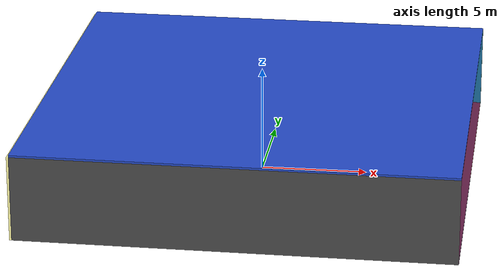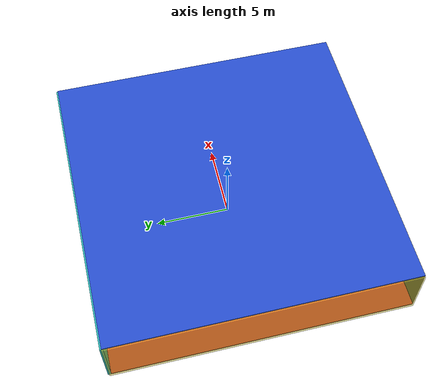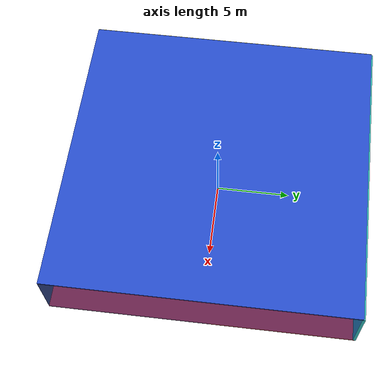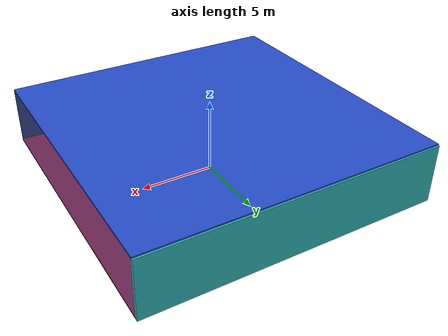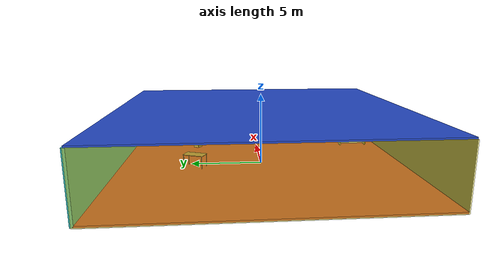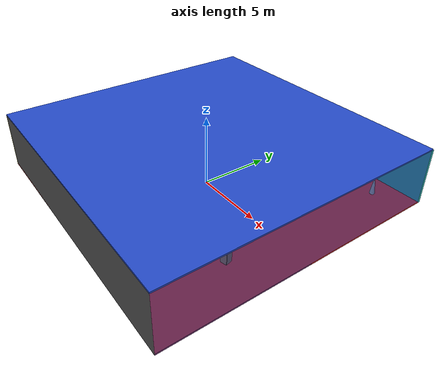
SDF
<sdf version="1.4">
 <world name="default">
  <physics type="ode">
   <max_step_size>0.001</max_step_size>
   <real_time_factor>1</real_time_factor>
   <real_time_update_rate>1000</real_time_update_rate>
   <gravity>0 0 -9.8</gravity>
  </physics>
  <scene><ambient>0.4 0.4 0.4 1</ambient><background>0.7 0.7 0.7 1</background><shadows>1</shadows></scene>
  <model name="Surrounding">
   <static>1</static>
   <link name="Ceiling">
    <collision name="Ceiling_Collision"><geometry><box><size>20 20 0.1</size></box></geometry></collision>
    <visual name="Ceiling_Visual">
     <geometry><box><size>20 20 0.1</size></box></geometry>
     <material>
      <script><uri>file://media/materials/scripts/gazebo.material</uri><name>Gazebo/BlueLaser</name></script>
     </material>
    </visual>
    <pose>0 0 4.05 0 0 0</pose>
   </link>
   <link name="Wall_South">
    <collision name="Wall_South_Collision">
     <geometry><box><size>20 0 4</size></box></geometry>
     <pose>0 0 2 0 -0 0</pose>
    </collision>
    <visual name="Wall_South_Visual">
     <pose>0 0 2 0 -0 0</pose>
     <geometry><box><size>20 0 4</size></box></geometry>
     <material>
      <script><uri>file://media/materials/scripts/gazebo.material</uri><name>Gazebo/DarkGrey</name></script>
     </material>
    </visual>
    <velocity_decay><linear>0</linear><angular>0</angular></velocity_decay>
    <pose>0 -10 0 0 -0 0</pose>
   </link>
   <link name="Wall_East">
    <collision name="Wall_21_Collision">
     <geometry><box><size>20 0 4</size></box></geometry>
     <pose>0 0 2 0 -0 0</pose>
    </collision>
    <visual name="Wall_21_Visual">
     <pose>0 0 2 0 -0 0</pose>
     <geometry><box><size>20 0 4</size></box></geometry>
     <material>
      <script><uri>file://media/materials/scripts/gazebo.material</uri><name>Gazebo/BlueTransparent</name></script>
     </material>
    </visual>
    <velocity_decay><linear>0</linear><angular>0</angular></velocity_decay>
    <pose>10 0 0 0 -0 1.5708</pose>
   </link>
   <link name="Wall_North">
    <collision name="Wall_22_Collision">
     <geometry><box><size>20 0.2 4</size></box></geometry>
     <pose>0 0 2 0 -0 0</pose>
    </collision>
    <visual name="Wall_22_Visual">
     <pose>0 0 2 0 -0 0</pose>
     <geometry><box><size>20 0.2 4</size></box></geometry>
     <material>
      <script>
       <uri>file://media/materials/scripts/gazebo.material</uri>
       <name>Gazebo/TurquoiseGlowOutline</name>
      </script>
     </material>
    </visual>
    <velocity_decay><linear>0</linear><angular>0</angular></velocity_decay>
    <pose>0 10 0 0 -0 0</pose>
   </link>
   <link name="Wall_West">
    <collision name="Wall_23_Collision">
     <geometry><box><size>20 0.2 4</size></box></geometry>
     <pose>0 0 2 0 -0 0</pose>
    </collision>
    <visual name="Wall_23_Visual">
     <pose>0 0 2 0 -0 0</pose>
     <geometry><box><size>20 0.2 4</size></box></geometry>
     <material>
      <script>
       <uri>file://media/materials/scripts/gazebo.material</uri>
       <name>Gazebo/YellowTransparent</name>
      </script>
     </material>
    </visual>
    <velocity_decay><linear>0</linear><angular>0</angular></velocity_decay>
    <pose>-10 0 0 0 0 -1.5708</pose>
   </link>
   <link name="Ground_link">
    <collision name="collision">
     <pose>0 0 .05 0 -0 0</pose>
     <geometry><box><size>20 20 0.1</size></box></geometry>
    </collision>
    <visual name="visual">
     <pose>0 0 .05 0 -0 0</pose>
     <geometry><box><size>20 20 0.1</size></box></geometry>
     <material>
      <script><uri>file://media/materials/scripts/gazebo.material</uri><name>Gazebo/RedBright</name></script>
     </material>
    </visual>
   </link>
   <static>1</static>
  </model>
  <spherical_coordinates>
   <surface_model>EARTH_WGS84</surface_model>
   <latitude_deg>0</latitude_deg>
   <longitude_deg>0</longitude_deg>
   <elevation>0</elevation>
   <heading_deg>0</heading_deg>
  </spherical_coordinates>
  <light name="lightball_0" type="diffuse">
   <diffuse>0.8 0.8 0.8 1</diffuse>
   <specular>0.2 0.2 0.2 1</specular>
   <attenuation>
    <range>100</range>
    <constant>0.7</constant>
    <linear>0.01</linear>
    <quadratic>0.001</quadratic>
   </attenuation>
   <direction>-0.5 0.1 -0.9</direction>
   <pose>6.68664617145 -8.04404253702 2.31556514601 0 0 0</pose>
  </light>
  <light name="lightball_1" type="diffuse">
   <diffuse>0.8 0.8 0.8 1</diffuse>
   <specular>0.2 0.2 0.2 1</specular>
   <attenuation>
    <range>100</range>
    <constant>0.7</constant>
    <linear>0.01</linear>
    <quadratic>0.001</quadratic>
   </attenuation>
   <direction>-0.5 0.1 -0.9</direction>
   <pose>-1.22757888872 4.8118968765 0.64277269927 0 0 0</pose>
  </light>
  <light name="lightball_2" type="diffuse">
   <diffuse>0.8 0.8 0.8 1</diffuse>
   <specular>0.2 0.2 0.2 1</specular>
   <attenuation>
    <range>100</range>
    <constant>0.7</constant>
    <linear>0.01</linear>
    <quadratic>0.001</quadratic>
   </attenuation>
   <direction>-0.5 0.1 -0.9</direction>
   <pose>-4.61580587524 -4.79006754535 1.56794557545 0 0 0</pose>
  </light>
  <light name="lightball_3" type="diffuse">
   <diffuse>0.8 0.8 0.8 1</diffuse>
   <specular>0.2 0.2 0.2 1</specular>
   <attenuation>
    <range>100</range>
    <constant>0.7</constant>
    <linear>0.01</linear>
    <quadratic>0.001</quadratic>
   </attenuation>
   <direction>-0.5 0.1 -0.9</direction>
   <pose>7.83184589282 -9.59329487537 2.67901358066 0 0 0</pose>
  </light>
  <include><uri>model://table</uri><pose>-0.999396564865 4.69665414286 0 0 0 1.17582857115</pose></include>
  <include>
   <uri>model://robocup_3Dsim_goal</uri>
   <pose>4.01297093916 -8.04609191871 0 0 0 0.0280691674997</pose>
  </include>
  <include><uri>model://cabinet</uri><pose>4.46986736004 4.84814282024 0 0 0 2.56241240805</pose></include>
  <include><uri>model://cabinet</uri><pose>7.08669597021 -3.70143921809 0 0 0 0.254646121275</pose></include>
  <include>
   <uri>model://construction_cone</uri>
   <pose>7.60796972584 8.25507066408 0 0 0 3.03359113284</pose>
  </include>
 </world>
</sdf>

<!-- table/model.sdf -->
<sdf version="1.5">
  <model name="table">
    <static>true</static>
    <link name="link">
      <collision name="surface">
        <pose>0 0 1.0 0 0 0</pose>
        <geometry>
          <box>
            <size>1.5 0.8 0.03</size>
          </box>
        </geometry>
        <surface>
          <friction>
            <ode>
              <mu>0.6</mu>
              <mu2>0.6</mu2>
            </ode>
          </friction>
        </surface>
      </collision>
      <visual name="visual1">
        <pose>0 0 1.0 0 0 0</pose>
        <geometry>
          <box>
            <size>1.5 0.8 0.03</size>
          </box>
        </geometry>
        <material>
          <script>
            <uri>model://media/materials/scripts/gazebo.material</uri>
            <name>Gazebo/Wood</name>
          </script>
        </material>
      </visual>
      <collision name="front_left_leg">
        <pose>0.68 0.38 0.5 0 0 0</pose>
        <geometry>
          <cylinder>
            <radius>0.02</radius>
            <length>1.0</length>
          </cylinder>
        </geometry>
      </collision>
      <visual name="front_left_leg">
        <pose>0.68 0.38 0.5 0 0 0</pose>
        <geometry>
          <cylinder>
            <radius>0.02</radius>
            <length>1.0</length>
          </cylinder>
        </geometry>
        <material>
          <script>
            <uri>model://media/materials/scripts/gazebo.material</uri>
            <name>Gazebo/Grey</name>
          </script>
        </material>
      </visual>
      <collision name="front_right_leg">
        <pose>0.68 -0.38 0.5 0 0 0</pose>
        <geometry>
          <cylinder>
            <radius>0.02</radius>
            <length>1.0</length>
          </cylinder>
        </geometry>
      </collision>
      <visual name="front_right_leg">
        <pose>0.68 -0.38 0.5 0 0 0</pose>
        <geometry>
          <cylinder>
            <radius>0.02</radius>
            <length>1.0</length>
          </cylinder>
        </geometry>
        <material>
          <script>
            <uri>model://media/materials/scripts/gazebo.material</uri>
            <name>Gazebo/Grey</name>
          </script>
        </material>
      </visual>
      <collision name="back_right_leg">
        <pose>-0.68 -0.38 0.5 0 0 0</pose>
        <geometry>
          <cylinder>
            <radius>0.02</radius>
            <length>1.0</length>
          </cylinder>
        </geometry>
      </collision>
      <visual name="back_right_leg">
        <pose>-0.68 -0.38 0.5 0 0 0</pose>
        <geometry>
          <cylinder>
            <radius>0.02</radius>
            <length>1.0</length>
          </cylinder>
        </geometry>
        <material>
          <script>
            <uri>model://media/materials/scripts/gazebo.material</uri>
            <name>Gazebo/Grey</name>
          </script>
        </material>
      </visual>
      <collision name="back_left_leg">
        <pose>-0.68 0.38 0.5 0 0 0</pose>
        <geometry>
          <cylinder>
            <radius>0.02</radius>
            <length>1.0</length>
          </cylinder>
        </geometry>
      </collision>
      <visual name="back_left_leg">
        <pose>-0.68 0.38 0.5 0 0 0</pose>
        <geometry>
          <cylinder>
            <radius>0.02</radius>
            <length>1.0</length>
          </cylinder>
        </geometry>
        <material>
          <script>
            <uri>model://media/materials/scripts/gazebo.material</uri>
            <name>Gazebo/Grey</name>
          </script>
        </material>
      </visual>
    </link>
  </model>
</sdf>

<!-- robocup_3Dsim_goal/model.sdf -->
<sdf version="1.5">
  <model name="robocup_3d_goal">
    <static>true</static>
    <link name="left_post">
      <pose>0 1.05 0.45 0 0 0</pose>
      <collision name="collision">
        <geometry>
          <cylinder>
            <radius>0.05</radius>
            <length>0.9</length>
          </cylinder>
        </geometry>
      </collision>
      <visual name="visual">
        <geometry>
          <cylinder>
            <radius>0.05</radius>
            <length>0.9</length>
          </cylinder>
        </geometry>
        <material>
          <script>
            <uri>file://media/materials/scripts/gazebo.material</uri>
            <name>Gazebo/ZincYellow</name>
          </script>
        </material>
      </visual>
    </link>
    <link name="left_support_horiz_lower">
      <pose>0.30 1.05 0.01 0 0 0</pose>
      <collision name="collision">
        <geometry>
          <box>
            <size>0.50 0.02 0.02</size>
          </box>
        </geometry>
      </collision>
      <visual name="visual">
        <geometry>
          <box>
            <size>0.50 0.02 0.02</size>
          </box>
        </geometry>
        <material>
          <script>
            <uri>file://media/materials/scripts/gazebo.material</uri>
            <name>Gazebo/White</name>
          </script>
        </material>
      </visual>
    </link>
    <link name="left_support_horiz_upper">
      <pose>0.30 1.05 0.79 0 0 0</pose>
      <collision name="collision">
        <geometry>
          <box>
            <size>0.50 0.02 0.02</size>
          </box>
        </geometry>
      </collision>
      <visual name="visual">
        <geometry>
          <box>
            <size>0.50 0.02 0.02</size>
          </box>
        </geometry>
        <material>
          <script>
            <uri>file://media/materials/scripts/gazebo.material</uri>
            <name>Gazebo/White</name>
          </script>
        </material>
      </visual>
    </link>
    <link name="left_support_vertical">
      <pose>0.56 1.05 0.4 0 1.5708 0</pose>
      <collision name="collision">
        <geometry>
          <box>
            <size>0.80 0.02 0.02</size>
          </box>
        </geometry>
      </collision>
      <visual name="visual">
        <geometry>
          <box>
            <size>0.80 0.02 0.02</size>
          </box>
        </geometry>
        <material>
          <script>
            <uri>file://media/materials/scripts/gazebo.material</uri>
            <name>Gazebo/White</name>
          </script>
        </material>
      </visual>
    </link>
    <link name="right_support_horiz_lower">
      <pose>0.30 -1.05 0.01 0 0 0</pose>
      <collision name="collision">
        <geometry>
          <box>
            <size>0.50 0.02 0.02</size>
          </box>
        </geometry>
      </collision>
      <visual name="visual">
        <geometry>
          <box>
            <size>0.50 0.02 0.02</size>
          </box>
        </geometry>
        <material>
          <script>
            <uri>file://media/materials/scripts/gazebo.material</uri>
            <name>Gazebo/White</name>
          </script>
        </material>
      </visual>
    </link>
    <link name="right_support_horiz_upper">
      <pose>0.30 -1.05 0.79 0 0 0</pose>
      <collision name="collision">
        <geometry>
          <box>
            <size>0.50 0.02 0.02</size>
          </box>
        </geometry>
      </collision>
      <visual name="visual">
        <geometry>
          <box>
            <size>0.50 0.02 0.02</size>
          </box>
        </geometry>
        <material>
          <script>
            <uri>file://media/materials/scripts/gazebo.material</uri>
            <name>Gazebo/White</name>
          </script>
        </material>
      </visual>
    </link>
    <link name="right_support_vertical">
      <pose>0.56 -1.05 0.4 0 1.5708 0</pose>
      <collision name="collision">
        <geometry>
          <box>
            <size>0.80 0.02 0.02</size>
          </box>
        </geometry>
      </collision>
      <visual name="visual">
        <geometry>
          <box>
            <size>0.80 0.02 0.02</size>
          </box>
        </geometry>
        <material>
          <script>
            <uri>file://media/materials/scripts/gazebo.material</uri>
            <name>Gazebo/White</name>
          </script>
        </material>
      </visual>
    </link>
    <link name="center_support_horiz_lower">
      <pose>0.56 0 0.01 0 1.5708 0</pose>
      <collision name="collision">
        <geometry>
          <box>
            <size>0.02 2.08 0.02</size>
          </box>
        </geometry>
      </collision>
      <visual name="visual">
        <geometry>
          <box>
            <size>0.02 2.08 0.02</size>
          </box>
        </geometry>
        <material>
          <script>
            <uri>file://media/materials/scripts/gazebo.material</uri>
            <name>Gazebo/White</name>
          </script>
        </material>
      </visual>
    </link>
    <link name="center_support_horiz_upper">
      <pose>0.56 0 0.79 0 1.5708 0</pose>
      <collision name="collision">
        <geometry>
          <box>
            <size>0.02 2.08 0.02</size>
          </box>
        </geometry>
      </collision>
      <visual name="visual">
        <geometry>
          <box>
            <size>0.02 2.08 0.02</size>
          </box>
        </geometry>
        <material>
          <script>
            <uri>file://media/materials/scripts/gazebo.material</uri>
            <name>Gazebo/White</name>
          </script>
        </material>
      </visual>
    </link>
    <link name="right_post">
      <pose>0 -1.05 0.45 0 0 0</pose>
      <collision name="collision">
        <geometry>
          <cylinder>
            <radius>0.05</radius>
            <length>0.9</length>
          </cylinder>
        </geometry>
      </collision>
      <visual name="visual">
        <geometry>
          <cylinder>
            <radius>0.05</radius>
            <length>0.9</length>
          </cylinder>
        </geometry>
        <material>
          <script>
            <uri>file://media/materials/scripts/gazebo.material</uri>
            <name>Gazebo/ZincYellow</name>
          </script>
        </material>
      </visual>
    </link>
    <link name="crossbar">
      <pose>0 0 0.85 1.57 1.57 0</pose>
      <collision name="collision">
        <geometry>
          <cylinder>
            <radius>0.05</radius>
            <length>2.0</length>
          </cylinder>
        </geometry>
      </collision>
      <visual name="visual">
        <geometry>
          <cylinder>
            <radius>0.05</radius>
            <length>2.0</length>
          </cylinder>
        </geometry>
        <material>
          <script>
            <uri>file://media/materials/scripts/gazebo.material</uri>
            <name>Gazebo/ZincYellow</name>
          </script>
        </material>
      </visual>
    </link>
    <link name="center_net">
      <pose>0.56 0 0.40 0 0 0</pose>
      <collision name="collision">
        <geometry>
          <box>
            <size>0.01 2.1 0.80</size>
          </box>
        </geometry>
      </collision>
      <visual name="visual">
        <geometry>
          <box>
            <size>0.01 2.1 0.80</size>
          </box>
        </geometry>
        <material>
          <script>
            <uri>model://../model_source/models/robocup09_spl_field/materials/scripts/</uri>
            <uri>model://../model_source/models/robocup09_spl_field/materials/textures/</uri>
            <name>RoboCup/Net</name>
          </script>
        </material>
      </visual>
    </link>
    <link name="left_net">
      <pose>0.30 1.05 0.40 0 0 0</pose>
      <collision name="collision">
        <geometry>
          <box>
            <size>0.50 0.01 0.76</size>
          </box>
        </geometry>
      </collision>
      <visual name="visual">
        <geometry>
          <box>
            <size>0.50 0.01 0.76</size>
          </box>
        </geometry>
        <material>
          <script>
            <uri>model://../model_source/models/robocup09_spl_field/materials/scripts/</uri>
            <uri>model://../model_source/models/robocup09_spl_field/materials/textures/</uri>
            <name>RoboCup/Net</name>
          </script>
        </material>
      </visual>
    </link>
    <link name="right_net">
      <pose>0.30 -1.05 0.40 0 0 0</pose>
      <collision name="collision">
        <geometry>
          <box>
            <size>0.50 0.01 0.76</size>
          </box>
        </geometry>
      </collision>
      <visual name="visual">
        <geometry>
          <box>
            <size>0.50 0.01 0.76</size>
          </box>
        </geometry>
        <material>
          <script>
            <uri>model://../model_source/models/robocup09_spl_field/materials/scripts/</uri>
            <uri>model://../model_source/models/robocup09_spl_field/materials/textures/</uri>
            <name>RoboCup/Net</name>
          </script>
        </material>
      </visual>
    </link>
  </model>
</sdf>

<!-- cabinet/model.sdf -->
<sdf version="1.5">
  <model name="cabinet">
    <static>true</static>
    <link name="cabinet_bottom_plate">
      <inertial>
        <pose>0 0 -1 0 0 0</pose>
        <inertia>
          <ixx>2.050000</ixx>
          <ixy>0</ixy>
          <ixz>0</ixz>
          <iyy>2.050000</iyy>
          <iyz>0</iyz>
          <izz>2.050000</izz>
        </inertia>
        <mass>25.000000</mass>
      </inertial>
      <collision name="cabinet_bottom_plate_geom">
        <pose>0 0 0.010000 0 0 0</pose>
        <geometry>
          <box>
            <size>0.450000 0.450000 0.020000</size>
          </box>
        </geometry>
      </collision>
      <visual name="cabinet_bottom_plate_geom_visual">
        <pose>0 0 0.010000 0 0 0</pose>
        <geometry>
          <box>
            <size>0.450000 0.450000 0.020000</size>
          </box>
        </geometry>
        <material>
          <script>
            <uri>model://media/materials/scripts/gazebo.material</uri>
            <name>Gazebo/Wood</name>
          </script>
        </material>
      </visual>
      <collision name="cabinet_bottom_plate_geom_cabinet_back_plate">
        <pose>0.235000 0 0.510000 0 0 0</pose>
        <geometry>
          <box>
            <size>0.020000 0.450000 1.020000</size>
          </box>
        </geometry>
      </collision>
      <visual name="cabinet_bottom_plate_geom_cabinet_back_plate_visual">
        <pose>0.235000 0 0.510000 0 0 0</pose>
        <geometry>
          <box>
            <size>0.020000 0.450000 1.020000</size>
          </box>
        </geometry>
        <material>
          <script>
            <uri>model://media/materials/scripts/gazebo.material</uri>
            <name>Gazebo/Wood</name>
          </script>
        </material>
      </visual>
      <collision name="cabinet_bottom_plate_geom_cabinet_left_plate">
        <pose>0 0.235000 0.510000 0 0 0</pose>
        <geometry>
          <box>
            <size>0.450000 0.020000 1.020000</size>
          </box>
        </geometry>
      </collision>
      <visual name="cabinet_bottom_plate_geom_cabinet_left_plate_visual">
        <pose>0 0.235000 0.510000 0 0 0</pose>
        <geometry>
          <box>
            <size>0.450000 0.020000 1.020000</size>
          </box>
        </geometry>
        <material>
          <script>
            <uri>model://media/materials/scripts/gazebo.material</uri>
            <name>Gazebo/Wood</name>
          </script>
        </material>
      </visual>
      <collision name="cabinet_bottom_plate_geom_cabinet_middle_plate">
        <pose>0 0 0.510000 0 0 0</pose>
        <geometry>
          <box>
            <size>0.450000 0.450000 0.020000</size>
          </box>
        </geometry>
      </collision>
      <visual name="cabinet_bottom_plate_geom_cabinet_middle_plate_visual">
        <pose>0 0 0.510000 0 0 0</pose>
        <geometry>
          <box>
            <size>0.450000 0.450000 0.020000</size>
          </box>
        </geometry>
        <material>
          <script>
            <uri>model://media/materials/scripts/gazebo.material</uri>
            <name>Gazebo/Wood</name>
          </script>
        </material>
      </visual>
      <collision name="cabinet_bottom_plate_geom_cabinet_right_plate">
        <pose>0 -0.235000 0.510000 0 0 0</pose>
        <geometry>
          <box>
            <size>0.450000 0.020000 1.020000</size>
          </box>
        </geometry>
      </collision>
      <visual name="cabinet_bottom_plate_geom_cabinet_right_plate_visual">
        <pose>0 -0.235000 0.510000 0 0 0</pose>
        <geometry>
          <box>
            <size>0.450000 0.020000 1.020000</size>
          </box>
        </geometry>
        <material>
          <script>
            <uri>model://media/materials/scripts/gazebo.material</uri>
            <name>Gazebo/Wood</name>
          </script>
        </material>
      </visual>
      <collision name="cabinet_bottom_plate_geom_cabinet_top_plate">
        <pose>0 0 1.010000 0 0 0</pose>
        <geometry>
          <box>
            <size>0.450000 0.450000 0.020000</size>
          </box>
        </geometry>
      </collision>
      <visual name="cabinet_bottom_plate_geom_cabinet_top_plate_visual">
        <pose>0 0 1.010000 0 0 0</pose>
        <geometry>
          <box>
            <size>0.450000 0.450000 0.020000</size>
          </box>
        </geometry>
        <material>
          <script>
            <uri>model://media/materials/scripts/gazebo.material</uri>
            <name>Gazebo/Wood</name>
          </script>
        </material>
      </visual>
    </link>
  </model>
</sdf>

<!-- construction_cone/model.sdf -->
<sdf version="1.5">
  <model name="Construction Cone">
    <link name="link">
      <collision name="collision">
        <geometry>
          <mesh>
            <scale>10 10 10</scale>
            <uri>file://isr-testbed/construction_cone/meshes/construction_cone.dae</uri>
          </mesh>
        </geometry>
      </collision>
      <visual name="visual">
        <geometry>
          <mesh>
            <scale>10 10 10</scale>
            <uri>file://isr-testbed/construction_cone/meshes/construction_cone.dae</uri>
          </mesh>
        </geometry>
      </visual>
    </link>
  </model>
</sdf>
